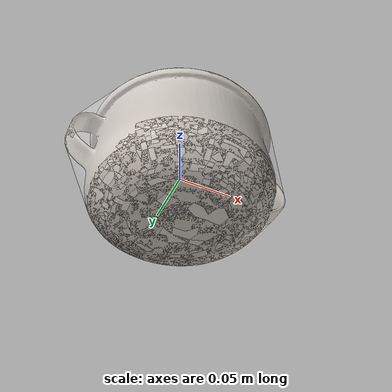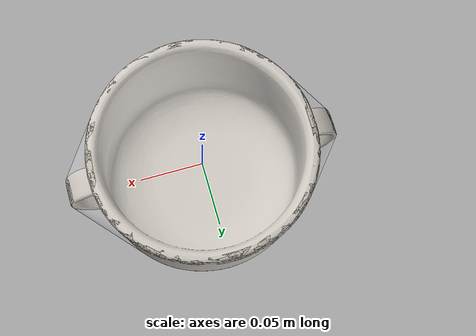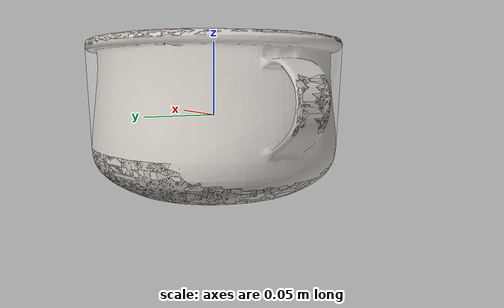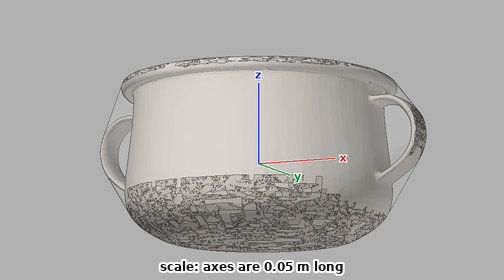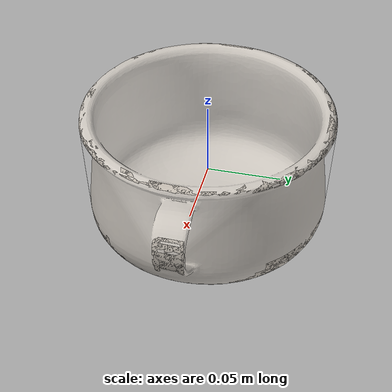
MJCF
<mujoco model="tampa">
  <asset>
    <mesh file="visual/modelo.obj" name="tampa_vis"/>
    <texture type="2d" name="tex_tampa" file="visual/material_0.png"/>
    <material name="mat_tampa" texture="tex_tampa" specular="0.3" shininess="0.3"/>
    <mesh file="colisao/casco_0.obj" name="tampa_col_0"/>
  </asset>
  <worldbody>
    <body>
      <body name="object">
        <geom type="mesh" mesh="tampa_vis" conaffinity="0" contype="0" group="1" material="mat_tampa"/>
        <geom class="collision" type="mesh" mesh="tampa_col_0"/>
      </body>
      <site rgba="0 0 0 0" size="0.005" pos="0 0 -0.03700" name="bottom_site"/>
      <site rgba="0 0 0 0" size="0.005" pos="0 0 0.03700" name="top_site"/>
      <site rgba="0 0 0 0" size="0.005" pos="0.08053 0 0" name="horizontal_radius_site"/>
    </body>
  </worldbody>
  <default>
    <default class="visual">
      <geom group="1" density="100"/>
    </default>
    <default class="collision">
      <geom group="0" mass="0.0800" solimp="0.95 0.98 0.001" solref="0.004 1" rgba="1 1 1 0.25" friction="1.2 0.05 0.002"/>
    </default>
  </default>
</mujoco>
